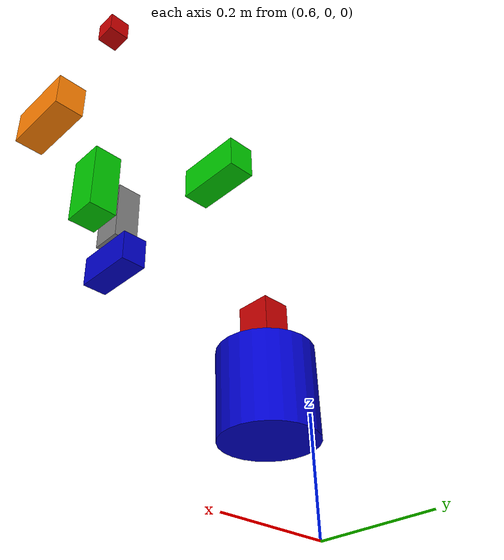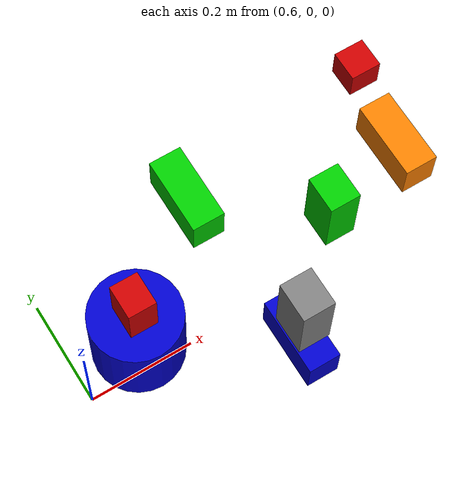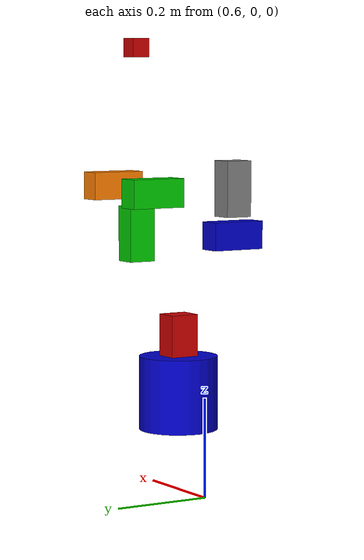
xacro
<?xml version="1.0"?>
<robot name="robotic_arm" xmlns:xacro="http://www.ros.org/wiki/xacro">

<!-- Material definitions -->
<material name="blue">
    <color rgba="0 0 0.8 1"/>
</material>

<material name="grey">
    <color rgba="0.5 0.5 0.5 1"/>
</material>

<material name="red">
    <color rgba="0.8 0 0 1"/>
</material>

<material name="green">
    <color rgba="0 0.8 0 1"/>
</material>

<material name="orange">
    <color rgba="1 0.5 0 1"/>
</material>

<xacro:macro name="dh_joint" params="name parent child a d alpha lower upper effort velocity">
    <joint name="${name}" type="revolute">
        <origin xyz="${a} 0 ${d}" rpy="${alpha} 0 0"/>
        <axis xyz="0 0 1"/>
        <limit lower="${lower}" upper="${upper}" effort="${effort}" velocity="${velocity}"/>
        <parent link="${parent}"/>
        <child link="${child}"/>
    </joint>
</xacro:macro>

<link name="world"/>

<link name="base_link">
    <collision>
        <geometry>
            <cylinder length="0.15" radius="0.08"/>
        </geometry>
    </collision>
    <visual>
        <geometry>
            <cylinder length="0.15" radius="0.08"/>
        </geometry>
        <material name="blue"/>
    </visual>
    <inertial>
        <origin xyz="0 0 0.075" rpy="0 0 0"/>
        <mass value="2.0"/>
        <inertia ixx="0.01" ixy="0" ixz="0"
                 iyy="0.01" iyz="0" izz="0.005"/>
    </inertial>
</link>

<joint name="world_to_base" type="fixed">
    <origin xyz="0.7 0 0.2" rpy="0 0 0"/>
    <parent link="world"/>
    <child link="base_link"/>
</joint>

<!-- joint1-->
<xacro:dh_joint name="joint1" parent="base_link" child="link1"
                a="0" d="0.1" alpha="0"
                lower="-3.14159" upper="3.14159"
                effort="10.0" velocity="1.0"/>

<link name="link1">
    <collision>
        <geometry>
            <box size="0.05 0.06 0.12"/>
        </geometry>
    </collision>
    <visual>
        <geometry>
            <box size="0.05 0.06 0.12"/>
        </geometry>
        <material name="red"/>
    </visual>
    <inertial>
        <origin xyz="0 0 0.06" rpy="0 0 0"/>
        <mass value="0.5"/>
        <inertia ixx="0.0001" ixy="0" ixz="0"
                 iyy="0.0001" iyz="0" izz="0.0003"/>
    </inertial>
</link>

<!-- joint2-->
 <xacro:dh_joint name="joint2" parent="link1" child="link2"
                a="0.1" d="0.3" alpha="${pi/2}"
                lower="0" upper="${pi}"
                effort="10.0" velocity="1.0"/>

<link name="link2">
    <collision>
        <geometry>
            <box size="0.05 0.06 0.12"/>
        </geometry>
    </collision>
    <visual>
        <geometry>
            <box size="0.05 0.06 0.12"/>
        </geometry>
        <material name="green"/>
    </visual>
    <inertial>
        <origin xyz="0 0 0.06" rpy="0 0 0"/>
        <mass value="0.5"/>
        <inertia ixx="0.0001" ixy="0" ixz="0"
                 iyy="0.0001" iyz="0" izz="0.0003"/>
    </inertial>
</link>

<!-- joint3-->
 <xacro:dh_joint name="joint3" parent="link2" child="link3"
                a="0.3" d="0.08" alpha="0"
                lower="${pi/2}" upper="${3*pi/2}"
                effort="10.0" velocity="1.0"/>

<link name="link3">
    <collision>
        <geometry>
            <box size="0.05 0.06 0.12"/>
        </geometry>
    </collision>
    <visual>
        <geometry>
            <box size="0.05 0.06 0.12"/>
        </geometry>
        <material name="orange"/>
    </visual>
    <inertial>
        <origin xyz="0 0 0.06" rpy="0 0 0"/>
        <mass value="0.5"/>
        <inertia ixx="0.0001" ixy="0" ixz="0"
                 iyy="0.0001" iyz="0" izz="0.0003"/>
    </inertial>
</link>

<!-- joint4-->
 <xacro:dh_joint name="joint4" parent="link3" child="link4"
                a="0.25" d="0.15" alpha="${-pi/2}"
                lower="0" upper="${2*pi}"
                effort="10.0" velocity="1.0"/>

<link name="link4">
    <collision>
        <geometry>
            <box size="0.05 0.06 0.12"/>
        </geometry>
    </collision>
    <visual>
        <geometry>
            <box size="0.05 0.06 0.12"/>
        </geometry>
        <material name="grey"/>
    </visual>
    <inertial>
        <origin xyz="0 0 0.06" rpy="0 0 0"/>
        <mass value="0.5"/>
        <inertia ixx="0.0001" ixy="0" ixz="0"
                 iyy="0.0001" iyz="0" izz="0.0003"/>
    </inertial>
</link>

<!-- joint5-->
 <xacro:dh_joint name="joint5" parent="link4" child="link5"
                a="0" d="0.1" alpha="${-pi/2}"
                lower="${pi/2}" upper="${3*pi/2}"
                effort="10.0" velocity="1.0"/>

<link name="link5">
    <collision>
        <geometry>
            <box size="0.05 0.06 0.12"/>
        </geometry>
    </collision>
    <visual>
        <geometry>
            <box size="0.05 0.06 0.12"/>
        </geometry>
        <material name="blue"/>
    </visual>
    <inertial>
        <origin xyz="0 0 0.06" rpy="0 0 0"/>
        <mass value="0.5"/>
        <inertia ixx="0.0001" ixy="0" ixz="0"
                 iyy="0.0001" iyz="0" izz="0.0003"/>
    </inertial>
</link>

<!-- joint6 -->
 <xacro:dh_joint name="joint6" parent="link5" child="link6"
                a="0.15" d="0.15" alpha="${pi/2}"
                lower="-3.14159" upper="3.14159"
                effort="10.0" velocity="1.0"/>

<link name="link6">
    <collision>
        <geometry>
            <box size="0.05 0.06 0.12"/>
        </geometry>
    </collision>
    <visual>
        <geometry>
            <box size="0.05 0.06 0.12"/>
        </geometry>
        <material name="green"/>
    </visual>
    <inertial>
        <origin xyz="0 0 0.06" rpy="0 0 0"/>
        <mass value="0.5"/>
        <inertia ixx="0.0001" ixy="0" ixz="0"
                 iyy="0.0001" iyz="0" izz="0.0003"/>
    </inertial>
</link>

<!-- joint7-->
 <joint name="joint7" type="fixed">
    <!-- 沿z₆轴偏移d₇距离，假设d₇=0.1 -->
    <origin xyz="0 0 0.4" rpy="0 0 0"/>
    <parent link="link6"/>
    <child link="end_effector"/>
</joint>

<!-- end effector -->
<link name="end_effector">
    <collision>
        <geometry>
            <box size="0.04 0.04 0.04"/>
        </geometry>
    </collision>
    <visual>
        <geometry>
            <box size="0.04 0.04 0.04"/>
        </geometry>
        <material name="red"/>
    </visual>
    <inertial>
        <origin xyz="0 0 0.02" rpy="0 0 0"/>
        <mass value="0.2"/>
        <inertia ixx="0.00001" ixy="0" ixz="0"
                 iyy="0.00001" iyz="0" izz="0.00001"/>
    </inertial>
</link>

</robot>
